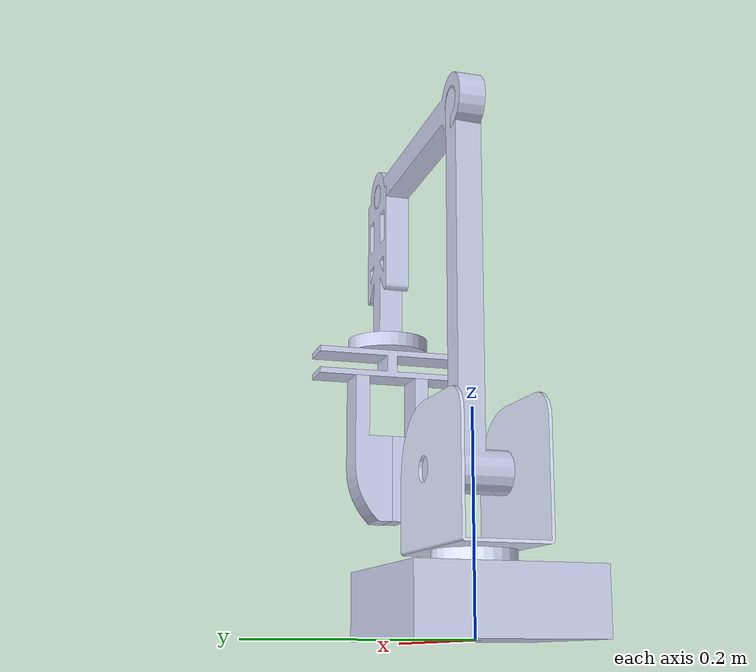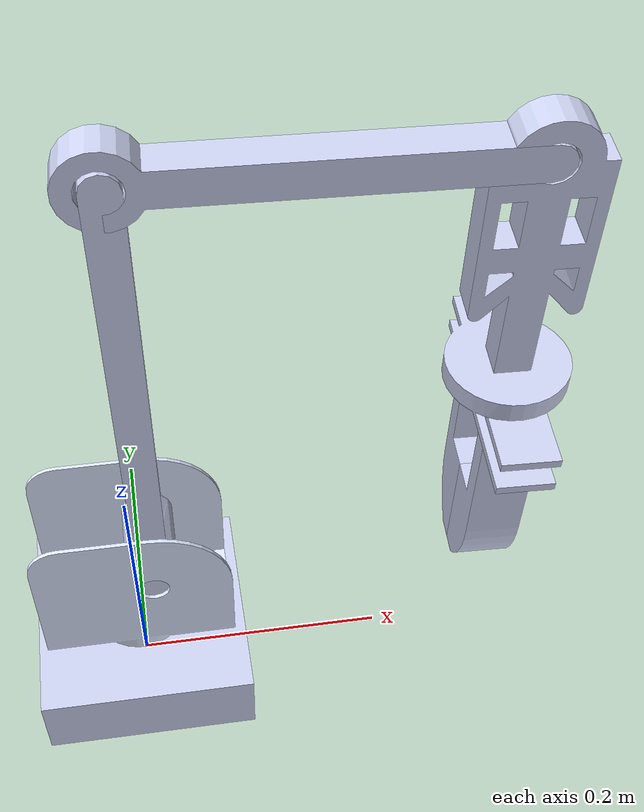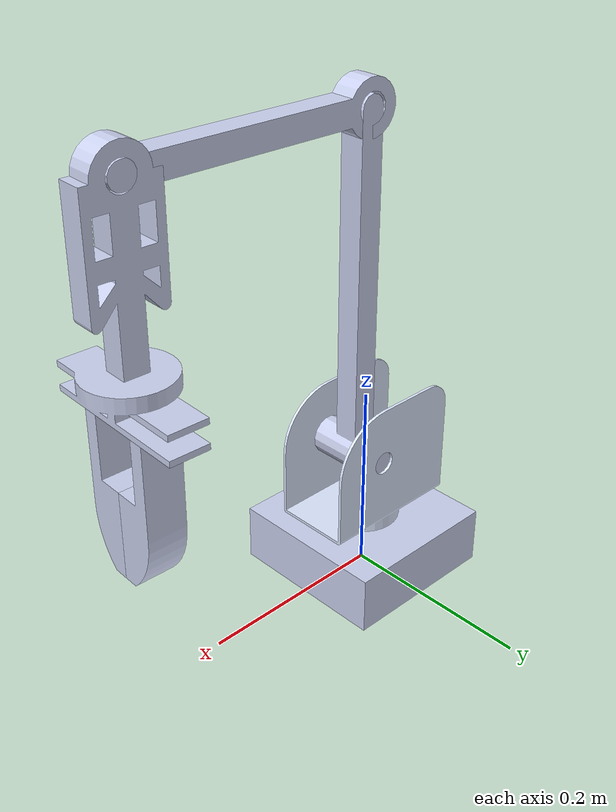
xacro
<?xml version="1.0"?>
<robot xmlns:xacro="http://www.ros.org/wiki/xacro" name="arm_sim">
    <xacro:arg name="initial_positions_file" default="initial_positions.yaml" />

    <!-- Import arm_sim urdf file -->
    <xacro:include filename="$(find arm_sim)/urdf/arm_sim.urdf" />

    <!-- Import control_xacro -->
    <xacro:include filename="arm_sim.ros2_control.xacro" />

    <xacro:arm_sim_ros2_control name="FakeSystem" initial_positions_file="$(arg initial_positions_file)"/>

</robot>

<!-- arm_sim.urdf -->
<robot
  name="arm_sim">
  <link
    name="base_link">
    <inertial>
      <origin
        xyz="1.0442E-18 -3.8397E-18 0.03"
        rpy="0 0 0" />
      <mass
        value="1.6962" />
      <inertia
        ixx="0.004536"
        ixy="-4.4723E-19"
        ixz="7.3177E-20"
        iyy="0.0045403"
        iyz="-1.3608E-19"
        izz="0.0080586" />
    </inertial>
    <visual>
      <origin
        xyz="0 0 0"
        rpy="0 0 0" />
      <geometry>
        <mesh
          filename="package://arm_sim/meshes/base_link.STL" />
      </geometry>
      <material
        name="">
        <color
          rgba="0.79216 0.81961 0.93333 1" />
      </material>
    </visual>
    <collision>
      <origin
        xyz="0 0 0"
        rpy="0 0 0" />
      <geometry>
        <mesh
          filename="package://arm_sim/meshes/base_link.STL" />
      </geometry>
    </collision>
  </link>
  <link
    name="link2">
    <inertial>
      <origin
        xyz="-0.0013242 -2.5266E-05 0.028196"
        rpy="0 0 0" />
      <mass
        value="0.55122" />
      <inertia
        ixx="0.0015705"
        ixy="-4.014E-06"
        ixz="5.5236E-05"
        iyy="0.0017808"
        iyz="1.0539E-06"
        izz="0.0013118" />
    </inertial>
    <visual>
      <origin
        xyz="0 0 0"
        rpy="0 0 0" />
      <geometry>
        <mesh
          filename="package://arm_sim/meshes/link2.STL" />
      </geometry>
      <material
        name="">
        <color
          rgba="0.86667 0.9098 1 1" />
      </material>
    </visual>
    <collision>
      <origin
        xyz="0 0 0"
        rpy="0 0 0" />
      <geometry>
        <mesh
          filename="package://arm_sim/meshes/link2.STL" />
      </geometry>
    </collision>
  </link>
  <joint
    name="base_joint"
    type="revolute">
    <origin
      xyz="0 0 0.078"
      rpy="0 0 -0.019078" />
    <parent
      link="base_link" />
    <child
      link="link2" />
    <axis
      xyz="0 0 1" />
    <limit
      lower="-1.57"
      upper="1.57"
      effort="300"
      velocity="3" />
  </joint>
  <link
    name="link3">
    <inertial>
      <origin
        xyz="6.6766E-06 -0.00034991 0.13252"
        rpy="0 0 0" />
      <mass
        value="0.31459" />
      <inertia
        ixx="0.0045719"
        ixy="6.499E-07"
        ixz="-1.1932E-07"
        iyy="0.0045379"
        iyz="6.2533E-06"
        izz="7.6719E-05" />
    </inertial>
    <visual>
      <origin
        xyz="0 0 0"
        rpy="0 0 0" />
      <geometry>
        <mesh
          filename="package://arm_sim/meshes/link3.STL" />
      </geometry>
      <material
        name="">
        <color
          rgba="0.79216 0.81961 0.93333 1" />
      </material>
    </visual>
    <collision>
      <origin
        xyz="0 0 0"
        rpy="0 0 0" />
      <geometry>
        <mesh
          filename="package://arm_sim/meshes/link3.STL" />
      </geometry>
    </collision>
  </link>
  <joint
    name="shoulder_joint"
    type="revolute">
    <origin
      xyz="0.014997 0.00028616 0.067144"
      rpy="0 0 0" />
    <parent
      link="link2" />
    <child
      link="link3" />
    <axis
      xyz="0.019077 -0.99982 0" />
    <limit
      lower="-1.57"
      upper="1.57"
      effort="200"
      velocity="3" />
  </joint>
  <link
    name="link4">
    <inertial>
      <origin
        xyz="0 -0.0005 0.11492"
        rpy="0 0 0" />
      <mass
        value="0.19742" />
      <inertia
        ixx="0.001482"
        ixy="-1.8168E-21"
        ixz="3.965E-21"
        iyy="0.0014901"
        iyz="7.6709E-20"
        izz="2.9301E-05" />
    </inertial>
    <visual>
      <origin
        xyz="0 0 0"
        rpy="0 0 0" />
      <geometry>
        <mesh
          filename="package://arm_sim/meshes/link4.STL" />
      </geometry>
      <material
        name="">
        <color
          rgba="0.79216 0.81961 0.93333 1" />
      </material>
    </visual>
    <collision>
      <origin
        xyz="0 0 0"
        rpy="0 0 0" />
      <geometry>
        <mesh
          filename="package://arm_sim/meshes/link4.STL" />
      </geometry>
    </collision>
  </link>
  <joint
    name="elbow_joint"
    type="revolute">
    <origin
      xyz="0 0 0.35"
      rpy="0.019078 1.5708 0" />
    <parent
      link="link3" />
    <child
      link="link4" />
    <axis
      xyz="0 -1 0" />
    <limit
      lower="0"
      upper="3.142"
      effort="200"
      velocity="3" />
  </joint>
  <link
    name="link5">
    <inertial>
      <origin
        xyz="-9.5387E-06 -0.00049991 0.063861"
        rpy="0 0 0" />
      <mass
        value="0.22542" />
      <inertia
        ixx="0.00056172"
        ixy="1.4841E-06"
        ixz="4.6152E-20"
        iyy="0.00063947"
        iyz="-7.2242E-20"
        izz="0.00010213" />
    </inertial>
    <visual>
      <origin
        xyz="0 0 0"
        rpy="0 0 0" />
      <geometry>
        <mesh
          filename="package://arm_sim/meshes/link5.STL" />
      </geometry>
      <material
        name="">
        <color
          rgba="0.79216 0.81961 0.93333 1" />
      </material>
    </visual>
    <collision>
      <origin
        xyz="0 0 0"
        rpy="0 0 0" />
      <geometry>
        <mesh
          filename="package://arm_sim/meshes/link5.STL" />
      </geometry>
    </collision>
  </link>
  <joint
    name="wrist_joint"
    type="revolute">
    <origin
      xyz="0 0 0.25654"
      rpy="1.5708 1.5517 1.5708" />
    <parent
      link="link4" />
    <child
      link="link5" />
    <axis
      xyz="-0.019077 -0.99982 0" />
    <limit
      lower="0"
      upper="+3.142"
      effort="200"
      velocity="3" />
  </joint>
  <link
    name="link6">
    <inertial>
      <origin
        xyz="-5.5511E-17 -2.6021E-18 0.0036393"
        rpy="0 0 0" />
      <mass
        value="0.17113" />
      <inertia
        ixx="0.00024193"
        ixy="-2.9599E-06"
        ixz="8.4614E-21"
        iyy="8.6859E-05"
        iyz="1.1435E-19"
        izz="0.00026021" />
    </inertial>
    <visual>
      <origin
        xyz="0 0 0"
        rpy="0 0 0" />
      <geometry>
        <mesh
          filename="package://arm_sim/meshes/link6.STL" />
      </geometry>
      <material
        name="">
        <color
          rgba="0.79216 0.81961 0.93333 1" />
      </material>
    </visual>
    <collision>
      <origin
        xyz="0 0 0"
        rpy="0 0 0" />
      <geometry>
        <mesh
          filename="package://arm_sim/meshes/link6.STL" />
      </geometry>
    </collision>
  </link>
  <joint
    name="roller_joint"
    type="revolute">
    <origin
      xyz="0 -0.00049991 0.18293"
      rpy="0 0 0" />
    <parent
      link="link5" />
    <child
      link="link6" />
    <axis
      xyz="0 0 -1" />
    <limit
      lower="0"
      upper="3.142"
      effort="200"
      velocity="3" />
  </joint>
  <link
    name="link7">
    <inertial>
      <origin
        xyz="-0.00041481 -0.02174 0.088764"
        rpy="0 0 0" />
      <mass
        value="0.16747" />
      <inertia
        ixx="0.00027682"
        ixy="-1.1382E-08"
        ixz="-7.605E-07"
        iyy="0.00027622"
        iyz="-3.9857E-05"
        izz="4.5256E-05" />
    </inertial>
    <visual>
      <origin
        xyz="0 0 0"
        rpy="0 0 0" />
      <geometry>
        <mesh
          filename="package://arm_sim/meshes/link7.STL" />
      </geometry>
      <material
        name="">
        <color
          rgba="0.79216 0.81961 0.93333 1" />
      </material>
    </visual>
    <collision>
      <origin
        xyz="0 0 0"
        rpy="0 0 0" />
      <geometry>
        <mesh
          filename="package://arm_sim/meshes/link7.STL" />
      </geometry>
    </collision>
  </link>
  <joint
    name="gripper_joint1"
    type="prismatic">
    <origin
      xyz="0 0 0.029647"
      rpy="0 0 0" />
    <parent
      link="link6" />
    <child
      link="link7" />
    <axis
      xyz="-0.019077 -0.99982 0" />
    <limit
      lower="0"
      upper="0.05"
      effort="100"
      velocity="3" />
  </joint>
  <link
    name="link8">
    <inertial>
      <origin
        xyz="0.00041481 0.02174 0.088764"
        rpy="0 0 0" />
      <mass
        value="0.16747" />
      <inertia
        ixx="0.00027682"
        ixy="-1.1382E-08"
        ixz="7.605E-07"
        iyy="0.00027622"
        iyz="3.9857E-05"
        izz="4.5256E-05" />
    </inertial>
    <visual>
      <origin
        xyz="0 0 0"
        rpy="0 0 0" />
      <geometry>
        <mesh
          filename="package://arm_sim/meshes/link8.STL" />
      </geometry>
      <material
        name="">
        <color
          rgba="0.79216 0.81961 0.93333 1" />
      </material>
    </visual>
    <collision>
      <origin
        xyz="0 0 0"
        rpy="0 0 0" />
      <geometry>
        <mesh
          filename="package://arm_sim/meshes/link8.STL" />
      </geometry>
    </collision>
  </link>
  <joint
    name="gripper_joint2"
    type="prismatic">
    <origin
      xyz="0 0 0.029647"
      rpy="0 0 0" />
    <parent
      link="link6" />
    <child
      link="link8" />
    <axis
      xyz="-0.019077 -0.99982 0" />
    <limit
      lower="-0.05"
      upper="0"
      effort="100"
      velocity="3" />
    <mimic joint="gripper_joint1" multiplier="-1" offset="0" />
  </joint>
</robot>
